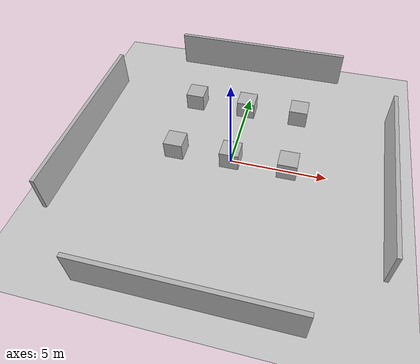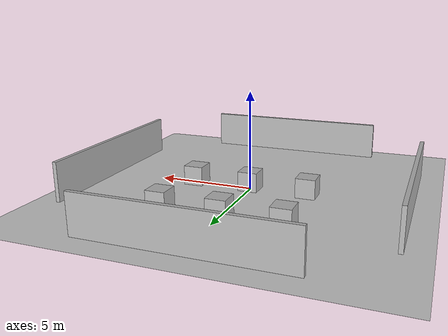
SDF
<?xml version="1.0" ?>

<sdf version="1.6">

  <world name="warehouse_world">

    <!-- 기본 환경 -->

    <!-- 바닥 -->
    <include>
      <uri>model://ground_plane</uri>
      <name>ground_plane_main</name>
    </include>

    <!-- 태양 -->
    <include>
      <uri>model://sun</uri>
      <name>sun_main</name>
    </include>

    <!-- 창고 외곽 벽 -->

    <!-- 북쪽 벽 -->
    <include>
      <uri>model://wall</uri>
      <name>wall_north</name>
      <pose>0 8 1 0 0 0</pose>
    </include>

    <!-- 남쪽 벽 -->
    <include>
      <uri>model://wall</uri>
      <name>wall_south</name>
      <pose>0 -8 1 0 0 0</pose>
    </include>

    <!-- 동쪽 벽 -->
    <include>
      <uri>model://wall</uri>
      <name>wall_east</name>
      <pose>8 0 1 0 0 1.57</pose>
    </include>

    <!-- 서쪽 벽 -->
    <include>
      <uri>model://wall</uri>
      <name>wall_west</name>
      <pose>-8 0 1 0 0 1.57</pose>
    </include>

    <!-- 창고 내부 장애물 -->

    <!-- 첫 번째 줄 -->
    <include>
      <uri>model://box_obstacle</uri>
      <name>box_obstacle_1</name>
      <pose>-3 4 0.5 0 0 0</pose>
    </include>

    <include>
      <uri>model://box_obstacle</uri>
      <name>box_obstacle_2</name>
      <pose>0 4 0.5 0 0 0</pose>
    </include>

    <include>
      <uri>model://box_obstacle</uri>
      <name>box_obstacle_3</name>
      <pose>3 4 0.5 0 0 0</pose>
    </include>

    <!-- 두 번째 줄 -->
    <include>
      <uri>model://box_obstacle</uri>
      <name>box_obstacle_4</name>
      <pose>-3 0 0.5 0 0 0</pose>
    </include>

    <include>
      <uri>model://box_obstacle</uri>
      <name>box_obstacle_5</name>
      <pose>0 0 0.5 0 0 0</pose>
    </include>

    <include>
      <uri>model://box_obstacle</uri>
      <name>box_obstacle_6</name>
      <pose>3 0 0.5 0 0 0</pose>
    </include>

    <!-- 로봇 시작 위치 공간 -->
    <!--
      왼쪽 아래 공간을 비워둠
      이후 로봇 spawn 예정
    -->

  </world>

</sdf>

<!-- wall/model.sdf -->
<sdf version="1.6">

  <model name="wall">

    <static>true</static>

    <link name="link">

      <collision name="collision">
        <geometry>
          <box>
            <size>10 0.2 2</size>
          </box>
        </geometry>
      </collision>

      <visual name="visual">
        <geometry>
          <box>
            <size>10 0.2 2</size>
          </box>
        </geometry>
      </visual>

    </link>

  </model>

</sdf>

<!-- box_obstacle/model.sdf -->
<sdf version="1.6">

  <model name="box_obstacle">

    <!-- 이 모델은 움직이지 않는 고정 물체라는 뜻 -->
    <static>true</static>

    <link name="link">

      <!-- 충돌 영역 -->
      <collision name="collision">

        <geometry>
          <box>
            <size>1 1 1</size> <!-- 보이는 모양도 1m × 1m × 1m 박스로 정의 -->
          </box>
        </geometry>

      </collision>

      <!-- 보이는 모양 -->
      <visual name="visual">

        <geometry>
          <box>
            <size>1 1 1</size>
          </box>
        </geometry>

      </visual>

    </link>

  </model>

</sdf>
